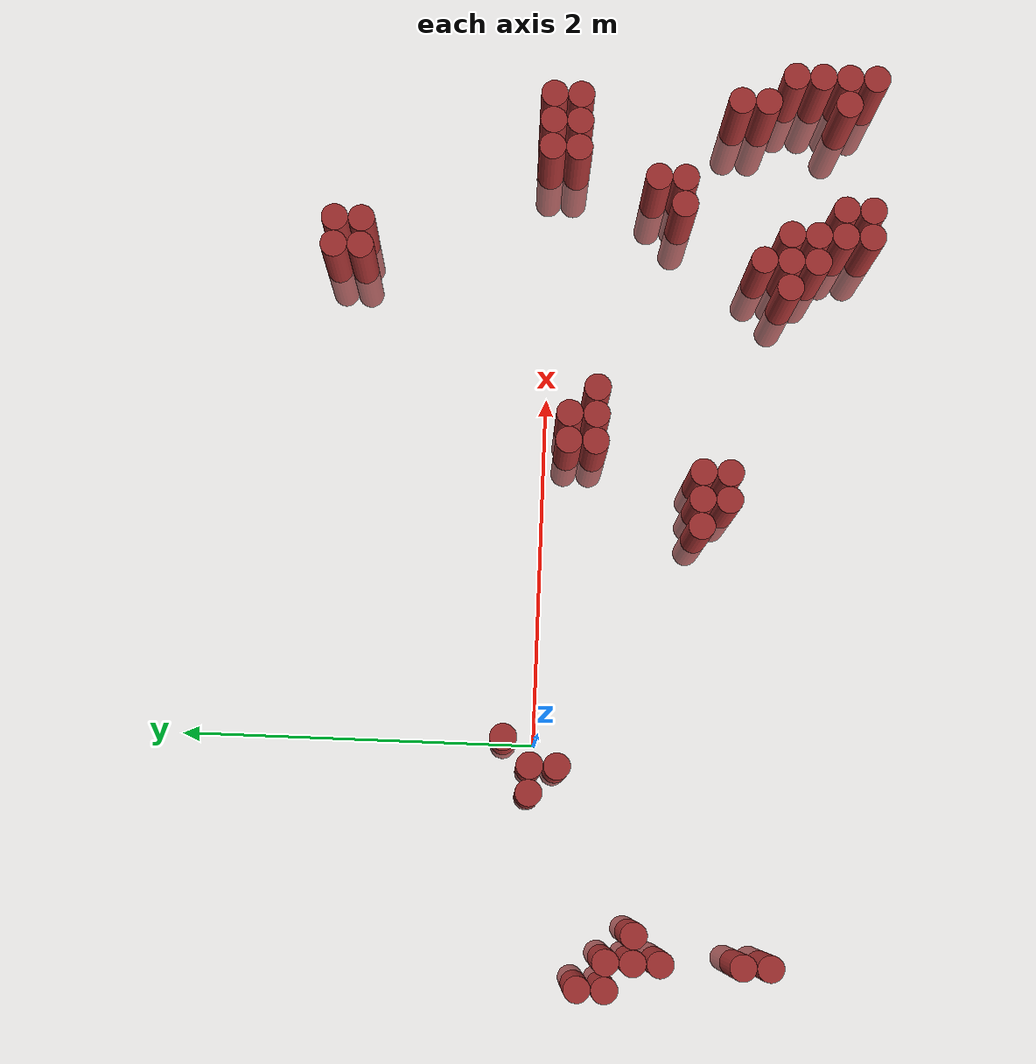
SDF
<sdf version="1.6">
 <world name="default">
  <model name="ground_plane">
   <static>1</static>
   <link name="link">
    <collision name="collision">
     <geometry><plane><normal>0 0 1</normal><size>100 100</size></plane></geometry>
     <surface><friction><ode><mu>100</mu><mu2>50</mu2></ode></friction></surface>
    </collision>
    <visual name="visual">
     <cast_shadows>0</cast_shadows>
     <geometry><plane><normal>0 0 1</normal><size>100 100</size></plane></geometry>
     <material>
      <script><uri>file://media/materials/scripts/gazebo.material</uri><name>Gazebo/Grey</name></script>
     </material>
    </visual>
   </link>
  </model>
  <model name="unit_cylinder_311">
   <static>1</static>
   <pose>-1.325000 -0.425000 0.000000 0.000000 0.000000 0.000000</pose>
   <link name="link">
    <inertial>
     <mass>1</mass>
     <inertia><ixx>0.145833</ixx><ixy>0</ixy><ixz>0</ixz><iyy>0.145833</iyy><iyz>0</iyz><izz>0.125</izz></inertia>
    </inertial>
    <collision name="collision">
     <geometry><cylinder><radius>0.075000</radius><length>1.5</length></cylinder></geometry>
    </collision>
    <visual name="visual">
     <geometry><cylinder><radius>0.075000</radius><length>1.5</length></cylinder></geometry>
     <material>
      <ambient>0.648000 0.192000 0.192000 1</ambient>
      <diffuse>0.648000 0.192000 0.192000 1</diffuse>
     </material>
     <material>
      <script><name>Gazebo/Grey</name><uri>file://media/materials/scripts/gazebo.material</uri></script>
     </material>
    </visual>
   </link>
  </model>
  <model name="unit_cylinder_312">
   <static>1</static>
   <pose>-1.325000 -0.275000 0.000000 0.000000 0.000000 0.000000</pose>
   <link name="link">
    <inertial>
     <mass>1</mass>
     <inertia><ixx>0.145833</ixx><ixy>0</ixy><ixz>0</ixz><iyy>0.145833</iyy><iyz>0</iyz><izz>0.125</izz></inertia>
    </inertial>
    <collision name="collision">
     <geometry><cylinder><radius>0.075000</radius><length>1.5</length></cylinder></geometry>
    </collision>
    <visual name="visual">
     <geometry><cylinder><radius>0.075000</radius><length>1.5</length></cylinder></geometry>
     <material>
      <ambient>0.648000 0.192000 0.192000 1</ambient>
      <diffuse>0.648000 0.192000 0.192000 1</diffuse>
     </material>
     <material>
      <script><name>Gazebo/Grey</name><uri>file://media/materials/scripts/gazebo.material</uri></script>
     </material>
    </visual>
   </link>
  </model>
  <model name="unit_cylinder_318">
   <static>1</static>
   <pose>-1.175000 -1.325000 0.000000 0.000000 0.000000 0.000000</pose>
   <link name="link">
    <inertial>
     <mass>1</mass>
     <inertia><ixx>0.145833</ixx><ixy>0</ixy><ixz>0</ixz><iyy>0.145833</iyy><iyz>0</iyz><izz>0.125</izz></inertia>
    </inertial>
    <collision name="collision">
     <geometry><cylinder><radius>0.075000</radius><length>1.5</length></cylinder></geometry>
    </collision>
    <visual name="visual">
     <geometry><cylinder><radius>0.075000</radius><length>1.5</length></cylinder></geometry>
     <material>
      <ambient>0.648000 0.192000 0.192000 1</ambient>
      <diffuse>0.648000 0.192000 0.192000 1</diffuse>
     </material>
     <material>
      <script><name>Gazebo/Grey</name><uri>file://media/materials/scripts/gazebo.material</uri></script>
     </material>
    </visual>
   </link>
  </model>
  <model name="unit_cylinder_319">
   <static>1</static>
   <pose>-1.175000 -1.175000 0.000000 0.000000 0.000000 0.000000</pose>
   <link name="link">
    <inertial>
     <mass>1</mass>
     <inertia><ixx>0.145833</ixx><ixy>0</ixy><ixz>0</ixz><iyy>0.145833</iyy><iyz>0</iyz><izz>0.125</izz></inertia>
    </inertial>
    <collision name="collision">
     <geometry><cylinder><radius>0.075000</radius><length>1.5</length></cylinder></geometry>
    </collision>
    <visual name="visual">
     <geometry><cylinder><radius>0.075000</radius><length>1.5</length></cylinder></geometry>
     <material>
      <ambient>0.648000 0.192000 0.192000 1</ambient>
      <diffuse>0.648000 0.192000 0.192000 1</diffuse>
     </material>
     <material>
      <script><name>Gazebo/Grey</name><uri>file://media/materials/scripts/gazebo.material</uri></script>
     </material>
    </visual>
   </link>
  </model>
  <model name="unit_cylinder_320">
   <static>1</static>
   <pose>-1.175000 -0.725000 0.000000 0.000000 0.000000 0.000000</pose>
   <link name="link">
    <inertial>
     <mass>1</mass>
     <inertia><ixx>0.145833</ixx><ixy>0</ixy><ixz>0</ixz><iyy>0.145833</iyy><iyz>0</iyz><izz>0.125</izz></inertia>
    </inertial>
    <collision name="collision">
     <geometry><cylinder><radius>0.075000</radius><length>1.5</length></cylinder></geometry>
    </collision>
    <visual name="visual">
     <geometry><cylinder><radius>0.075000</radius><length>1.5</length></cylinder></geometry>
     <material>
      <ambient>0.648000 0.192000 0.192000 1</ambient>
      <diffuse>0.648000 0.192000 0.192000 1</diffuse>
     </material>
     <material>
      <script><name>Gazebo/Grey</name><uri>file://media/materials/scripts/gazebo.material</uri></script>
     </material>
    </visual>
   </link>
  </model>
  <model name="unit_cylinder_321">
   <static>1</static>
   <pose>-1.175000 -0.575000 0.000000 0.000000 0.000000 0.000000</pose>
   <link name="link">
    <inertial>
     <mass>1</mass>
     <inertia><ixx>0.145833</ixx><ixy>0</ixy><ixz>0</ixz><iyy>0.145833</iyy><iyz>0</iyz><izz>0.125</izz></inertia>
    </inertial>
    <collision name="collision">
     <geometry><cylinder><radius>0.075000</radius><length>1.5</length></cylinder></geometry>
    </collision>
    <visual name="visual">
     <geometry><cylinder><radius>0.075000</radius><length>1.5</length></cylinder></geometry>
     <material>
      <ambient>0.648000 0.192000 0.192000 1</ambient>
      <diffuse>0.648000 0.192000 0.192000 1</diffuse>
     </material>
     <material>
      <script><name>Gazebo/Grey</name><uri>file://media/materials/scripts/gazebo.material</uri></script>
     </material>
    </visual>
   </link>
  </model>
  <model name="unit_cylinder_322">
   <static>1</static>
   <pose>-1.175000 -0.425000 0.000000 0.000000 0.000000 0.000000</pose>
   <link name="link">
    <inertial>
     <mass>1</mass>
     <inertia><ixx>0.145833</ixx><ixy>0</ixy><ixz>0</ixz><iyy>0.145833</iyy><iyz>0</iyz><izz>0.125</izz></inertia>
    </inertial>
    <collision name="collision">
     <geometry><cylinder><radius>0.075000</radius><length>1.5</length></cylinder></geometry>
    </collision>
    <visual name="visual">
     <geometry><cylinder><radius>0.075000</radius><length>1.5</length></cylinder></geometry>
     <material>
      <ambient>0.648000 0.192000 0.192000 1</ambient>
      <diffuse>0.648000 0.192000 0.192000 1</diffuse>
     </material>
     <material>
      <script><name>Gazebo/Grey</name><uri>file://media/materials/scripts/gazebo.material</uri></script>
     </material>
    </visual>
   </link>
  </model>
  <model name="unit_cylinder_326">
   <static>1</static>
   <pose>-1.025000 -0.575000 0.000000 0.000000 0.000000 0.000000</pose>
   <link name="link">
    <inertial>
     <mass>1</mass>
     <inertia><ixx>0.145833</ixx><ixy>0</ixy><ixz>0</ixz><iyy>0.145833</iyy><iyz>0</iyz><izz>0.125</izz></inertia>
    </inertial>
    <collision name="collision">
     <geometry><cylinder><radius>0.075000</radius><length>1.5</length></cylinder></geometry>
    </collision>
    <visual name="visual">
     <geometry><cylinder><radius>0.075000</radius><length>1.5</length></cylinder></geometry>
     <material>
      <ambient>0.648000 0.192000 0.192000 1</ambient>
      <diffuse>0.648000 0.192000 0.192000 1</diffuse>
     </material>
     <material>
      <script><name>Gazebo/Grey</name><uri>file://media/materials/scripts/gazebo.material</uri></script>
     </material>
    </visual>
   </link>
  </model>
  <model name="unit_cylinder_332">
   <static>1</static>
   <pose>-0.275000 0.025000 0.000000 0.000000 0.000000 0.000000</pose>
   <link name="link">
    <inertial>
     <mass>1</mass>
     <inertia><ixx>0.145833</ixx><ixy>0</ixy><ixz>0</ixz><iyy>0.145833</iyy><iyz>0</iyz><izz>0.125</izz></inertia>
    </inertial>
    <collision name="collision">
     <geometry><cylinder><radius>0.075000</radius><length>1.5</length></cylinder></geometry>
    </collision>
    <visual name="visual">
     <geometry><cylinder><radius>0.075000</radius><length>1.5</length></cylinder></geometry>
     <material>
      <ambient>0.648000 0.192000 0.192000 1</ambient>
      <diffuse>0.648000 0.192000 0.192000 1</diffuse>
     </material>
     <material>
      <script><name>Gazebo/Grey</name><uri>file://media/materials/scripts/gazebo.material</uri></script>
     </material>
    </visual>
   </link>
  </model>
  <model name="unit_cylinder_338">
   <static>1</static>
   <pose>-0.125000 -0.125000 0.000000 0.000000 0.000000 0.000000</pose>
   <link name="link">
    <inertial>
     <mass>1</mass>
     <inertia><ixx>0.145833</ixx><ixy>0</ixy><ixz>0</ixz><iyy>0.145833</iyy><iyz>0</iyz><izz>0.125</izz></inertia>
    </inertial>
    <collision name="collision">
     <geometry><cylinder><radius>0.075000</radius><length>1.5</length></cylinder></geometry>
    </collision>
    <visual name="visual">
     <geometry><cylinder><radius>0.075000</radius><length>1.5</length></cylinder></geometry>
     <material>
      <ambient>0.648000 0.192000 0.192000 1</ambient>
      <diffuse>0.648000 0.192000 0.192000 1</diffuse>
     </material>
     <material>
      <script><name>Gazebo/Grey</name><uri>file://media/materials/scripts/gazebo.material</uri></script>
     </material>
    </visual>
   </link>
  </model>
  <model name="unit_cylinder_339">
   <static>1</static>
   <pose>-0.125000 0.025000 0.000000 0.000000 0.000000 0.000000</pose>
   <link name="link">
    <inertial>
     <mass>1</mass>
     <inertia><ixx>0.145833</ixx><ixy>0</ixy><ixz>0</ixz><iyy>0.145833</iyy><iyz>0</iyz><izz>0.125</izz></inertia>
    </inertial>
    <collision name="collision">
     <geometry><cylinder><radius>0.075000</radius><length>1.5</length></cylinder></geometry>
    </collision>
    <visual name="visual">
     <geometry><cylinder><radius>0.075000</radius><length>1.5</length></cylinder></geometry>
     <material>
      <ambient>0.648000 0.192000 0.192000 1</ambient>
      <diffuse>0.648000 0.192000 0.192000 1</diffuse>
     </material>
     <material>
      <script><name>Gazebo/Grey</name><uri>file://media/materials/scripts/gazebo.material</uri></script>
     </material>
    </visual>
   </link>
  </model>
  <model name="unit_cylinder_345">
   <static>1</static>
   <pose>0.025000 0.175000 0.000000 0.000000 0.000000 0.000000</pose>
   <link name="link">
    <inertial>
     <mass>1</mass>
     <inertia><ixx>0.145833</ixx><ixy>0</ixy><ixz>0</ixz><iyy>0.145833</iyy><iyz>0</iyz><izz>0.125</izz></inertia>
    </inertial>
    <collision name="collision">
     <geometry><cylinder><radius>0.075000</radius><length>1.5</length></cylinder></geometry>
    </collision>
    <visual name="visual">
     <geometry><cylinder><radius>0.075000</radius><length>1.5</length></cylinder></geometry>
     <material>
      <ambient>0.648000 0.192000 0.192000 1</ambient>
      <diffuse>0.648000 0.192000 0.192000 1</diffuse>
     </material>
     <material>
      <script><name>Gazebo/Grey</name><uri>file://media/materials/scripts/gazebo.material</uri></script>
     </material>
    </visual>
   </link>
  </model>
  <model name="unit_cylinder_368">
   <static>1</static>
   <pose>1.225000 -0.875000 0.000000 0.000000 0.000000 0.000000</pose>
   <link name="link">
    <inertial>
     <mass>1</mass>
     <inertia><ixx>0.145833</ixx><ixy>0</ixy><ixz>0</ixz><iyy>0.145833</iyy><iyz>0</iyz><izz>0.125</izz></inertia>
    </inertial>
    <collision name="collision">
     <geometry><cylinder><radius>0.075000</radius><length>1.5</length></cylinder></geometry>
    </collision>
    <visual name="visual">
     <geometry><cylinder><radius>0.075000</radius><length>1.5</length></cylinder></geometry>
     <material>
      <ambient>0.648000 0.192000 0.192000 1</ambient>
      <diffuse>0.648000 0.192000 0.192000 1</diffuse>
     </material>
     <material>
      <script><name>Gazebo/Grey</name><uri>file://media/materials/scripts/gazebo.material</uri></script>
     </material>
    </visual>
   </link>
  </model>
  <model name="unit_cylinder_371">
   <static>1</static>
   <pose>1.375000 -1.025000 0.000000 0.000000 0.000000 0.000000</pose>
   <link name="link">
    <inertial>
     <mass>1</mass>
     <inertia><ixx>0.145833</ixx><ixy>0</ixy><ixz>0</ixz><iyy>0.145833</iyy><iyz>0</iyz><izz>0.125</izz></inertia>
    </inertial>
    <collision name="collision">
     <geometry><cylinder><radius>0.075000</radius><length>1.5</length></cylinder></geometry>
    </collision>
    <visual name="visual">
     <geometry><cylinder><radius>0.075000</radius><length>1.5</length></cylinder></geometry>
     <material>
      <ambient>0.648000 0.192000 0.192000 1</ambient>
      <diffuse>0.648000 0.192000 0.192000 1</diffuse>
     </material>
     <material>
      <script><name>Gazebo/Grey</name><uri>file://media/materials/scripts/gazebo.material</uri></script>
     </material>
    </visual>
   </link>
  </model>
  <model name="unit_cylinder_372">
   <static>1</static>
   <pose>1.375000 -0.875000 0.000000 0.000000 0.000000 0.000000</pose>
   <link name="link">
    <inertial>
     <mass>1</mass>
     <inertia><ixx>0.145833</ixx><ixy>0</ixy><ixz>0</ixz><iyy>0.145833</iyy><iyz>0</iyz><izz>0.125</izz></inertia>
    </inertial>
    <collision name="collision">
     <geometry><cylinder><radius>0.075000</radius><length>1.5</length></cylinder></geometry>
    </collision>
    <visual name="visual">
     <geometry><cylinder><radius>0.075000</radius><length>1.5</length></cylinder></geometry>
     <material>
      <ambient>0.648000 0.192000 0.192000 1</ambient>
      <diffuse>0.648000 0.192000 0.192000 1</diffuse>
     </material>
     <material>
      <script><name>Gazebo/Grey</name><uri>file://media/materials/scripts/gazebo.material</uri></script>
     </material>
    </visual>
   </link>
  </model>
  <model name="unit_cylinder_373">
   <static>1</static>
   <pose>1.525000 -1.025000 0.000000 0.000000 0.000000 0.000000</pose>
   <link name="link">
    <inertial>
     <mass>1</mass>
     <inertia><ixx>0.145833</ixx><ixy>0</ixy><ixz>0</ixz><iyy>0.145833</iyy><iyz>0</iyz><izz>0.125</izz></inertia>
    </inertial>
    <collision name="collision">
     <geometry><cylinder><radius>0.075000</radius><length>1.5</length></cylinder></geometry>
    </collision>
    <visual name="visual">
     <geometry><cylinder><radius>0.075000</radius><length>1.5</length></cylinder></geometry>
     <material>
      <ambient>0.648000 0.192000 0.192000 1</ambient>
      <diffuse>0.648000 0.192000 0.192000 1</diffuse>
     </material>
     <material>
      <script><name>Gazebo/Grey</name><uri>file://media/materials/scripts/gazebo.material</uri></script>
     </material>
    </visual>
   </link>
  </model>
  <model name="unit_cylinder_374">
   <static>1</static>
   <pose>1.525000 -0.875000 0.000000 0.000000 0.000000 0.000000</pose>
   <link name="link">
    <inertial>
     <mass>1</mass>
     <inertia><ixx>0.145833</ixx><ixy>0</ixy><ixz>0</ixz><iyy>0.145833</iyy><iyz>0</iyz><izz>0.125</izz></inertia>
    </inertial>
    <collision name="collision">
     <geometry><cylinder><radius>0.075000</radius><length>1.5</length></cylinder></geometry>
    </collision>
    <visual name="visual">
     <geometry><cylinder><radius>0.075000</radius><length>1.5</length></cylinder></geometry>
     <material>
      <ambient>0.648000 0.192000 0.192000 1</ambient>
      <diffuse>0.648000 0.192000 0.192000 1</diffuse>
     </material>
     <material>
      <script><name>Gazebo/Grey</name><uri>file://media/materials/scripts/gazebo.material</uri></script>
     </material>
    </visual>
   </link>
  </model>
  <model name="unit_cylinder_375">
   <static>1</static>
   <pose>1.675000 -0.275000 0.000000 0.000000 0.000000 0.000000</pose>
   <link name="link">
    <inertial>
     <mass>1</mass>
     <inertia><ixx>0.145833</ixx><ixy>0</ixy><ixz>0</ixz><iyy>0.145833</iyy><iyz>0</iyz><izz>0.125</izz></inertia>
    </inertial>
    <collision name="collision">
     <geometry><cylinder><radius>0.075000</radius><length>1.5</length></cylinder></geometry>
    </collision>
    <visual name="visual">
     <geometry><cylinder><radius>0.075000</radius><length>1.5</length></cylinder></geometry>
     <material>
      <ambient>0.648000 0.192000 0.192000 1</ambient>
      <diffuse>0.648000 0.192000 0.192000 1</diffuse>
     </material>
     <material>
      <script><name>Gazebo/Grey</name><uri>file://media/materials/scripts/gazebo.material</uri></script>
     </material>
    </visual>
   </link>
  </model>
  <model name="unit_cylinder_376">
   <static>1</static>
   <pose>1.675000 -0.125000 0.000000 0.000000 0.000000 0.000000</pose>
   <link name="link">
    <inertial>
     <mass>1</mass>
     <inertia><ixx>0.145833</ixx><ixy>0</ixy><ixz>0</ixz><iyy>0.145833</iyy><iyz>0</iyz><izz>0.125</izz></inertia>
    </inertial>
    <collision name="collision">
     <geometry><cylinder><radius>0.075000</radius><length>1.5</length></cylinder></geometry>
    </collision>
    <visual name="visual">
     <geometry><cylinder><radius>0.075000</radius><length>1.5</length></cylinder></geometry>
     <material>
      <ambient>0.648000 0.192000 0.192000 1</ambient>
      <diffuse>0.648000 0.192000 0.192000 1</diffuse>
     </material>
     <material>
      <script><name>Gazebo/Grey</name><uri>file://media/materials/scripts/gazebo.material</uri></script>
     </material>
    </visual>
   </link>
  </model>
  <model name="unit_cylinder_377">
   <static>1</static>
   <pose>1.825000 -0.275000 0.000000 0.000000 0.000000 0.000000</pose>
   <link name="link">
    <inertial>
     <mass>1</mass>
     <inertia><ixx>0.145833</ixx><ixy>0</ixy><ixz>0</ixz><iyy>0.145833</iyy><iyz>0</iyz><izz>0.125</izz></inertia>
    </inertial>
    <collision name="collision">
     <geometry><cylinder><radius>0.075000</radius><length>1.5</length></cylinder></geometry>
    </collision>
    <visual name="visual">
     <geometry><cylinder><radius>0.075000</radius><length>1.5</length></cylinder></geometry>
     <material>
      <ambient>0.648000 0.192000 0.192000 1</ambient>
      <diffuse>0.648000 0.192000 0.192000 1</diffuse>
     </material>
     <material>
      <script><name>Gazebo/Grey</name><uri>file://media/materials/scripts/gazebo.material</uri></script>
     </material>
    </visual>
   </link>
  </model>
  <model name="unit_cylinder_378">
   <static>1</static>
   <pose>1.825000 -0.125000 0.000000 0.000000 0.000000 0.000000</pose>
   <link name="link">
    <inertial>
     <mass>1</mass>
     <inertia><ixx>0.145833</ixx><ixy>0</ixy><ixz>0</ixz><iyy>0.145833</iyy><iyz>0</iyz><izz>0.125</izz></inertia>
    </inertial>
    <collision name="collision">
     <geometry><cylinder><radius>0.075000</radius><length>1.5</length></cylinder></geometry>
    </collision>
    <visual name="visual">
     <geometry><cylinder><radius>0.075000</radius><length>1.5</length></cylinder></geometry>
     <material>
      <ambient>0.648000 0.192000 0.192000 1</ambient>
      <diffuse>0.648000 0.192000 0.192000 1</diffuse>
     </material>
     <material>
      <script><name>Gazebo/Grey</name><uri>file://media/materials/scripts/gazebo.material</uri></script>
     </material>
    </visual>
   </link>
  </model>
  <model name="unit_cylinder_381">
   <static>1</static>
   <pose>1.975000 -0.275000 0.000000 0.000000 0.000000 0.000000</pose>
   <link name="link">
    <inertial>
     <mass>1</mass>
     <inertia><ixx>0.145833</ixx><ixy>0</ixy><ixz>0</ixz><iyy>0.145833</iyy><iyz>0</iyz><izz>0.125</izz></inertia>
    </inertial>
    <collision name="collision">
     <geometry><cylinder><radius>0.075000</radius><length>1.5</length></cylinder></geometry>
    </collision>
    <visual name="visual">
     <geometry><cylinder><radius>0.075000</radius><length>1.5</length></cylinder></geometry>
     <material>
      <ambient>0.648000 0.192000 0.192000 1</ambient>
      <diffuse>0.648000 0.192000 0.192000 1</diffuse>
     </material>
     <material>
      <script><name>Gazebo/Grey</name><uri>file://media/materials/scripts/gazebo.material</uri></script>
     </material>
    </visual>
   </link>
  </model>
  <model name="unit_cylinder_401">
   <static>1</static>
   <pose>2.575000 -1.325000 0.000000 0.000000 0.000000 0.000000</pose>
   <link name="link">
    <inertial>
     <mass>1</mass>
     <inertia><ixx>0.145833</ixx><ixy>0</ixy><ixz>0</ixz><iyy>0.145833</iyy><iyz>0</iyz><izz>0.125</izz></inertia>
    </inertial>
    <collision name="collision">
     <geometry><cylinder><radius>0.075000</radius><length>1.5</length></cylinder></geometry>
    </collision>
    <visual name="visual">
     <geometry><cylinder><radius>0.075000</radius><length>1.5</length></cylinder></geometry>
     <material>
      <ambient>0.648000 0.192000 0.192000 1</ambient>
      <diffuse>0.648000 0.192000 0.192000 1</diffuse>
     </material>
     <material>
      <script><name>Gazebo/Grey</name><uri>file://media/materials/scripts/gazebo.material</uri></script>
     </material>
    </visual>
   </link>
  </model>
  <model name="unit_cylinder_405">
   <static>1</static>
   <pose>2.725000 -1.475000 0.000000 0.000000 0.000000 0.000000</pose>
   <link name="link">
    <inertial>
     <mass>1</mass>
     <inertia><ixx>0.145833</ixx><ixy>0</ixy><ixz>0</ixz><iyy>0.145833</iyy><iyz>0</iyz><izz>0.125</izz></inertia>
    </inertial>
    <collision name="collision">
     <geometry><cylinder><radius>0.075000</radius><length>1.5</length></cylinder></geometry>
    </collision>
    <visual name="visual">
     <geometry><cylinder><radius>0.075000</radius><length>1.5</length></cylinder></geometry>
     <material>
      <ambient>0.648000 0.192000 0.192000 1</ambient>
      <diffuse>0.648000 0.192000 0.192000 1</diffuse>
     </material>
     <material>
      <script><name>Gazebo/Grey</name><uri>file://media/materials/scripts/gazebo.material</uri></script>
     </material>
    </visual>
   </link>
  </model>
  <model name="unit_cylinder_406">
   <static>1</static>
   <pose>2.725000 -1.325000 0.000000 0.000000 0.000000 0.000000</pose>
   <link name="link">
    <inertial>
     <mass>1</mass>
     <inertia><ixx>0.145833</ixx><ixy>0</ixy><ixz>0</ixz><iyy>0.145833</iyy><iyz>0</iyz><izz>0.125</izz></inertia>
    </inertial>
    <collision name="collision">
     <geometry><cylinder><radius>0.075000</radius><length>1.5</length></cylinder></geometry>
    </collision>
    <visual name="visual">
     <geometry><cylinder><radius>0.075000</radius><length>1.5</length></cylinder></geometry>
     <material>
      <ambient>0.648000 0.192000 0.192000 1</ambient>
      <diffuse>0.648000 0.192000 0.192000 1</diffuse>
     </material>
     <material>
      <script><name>Gazebo/Grey</name><uri>file://media/materials/scripts/gazebo.material</uri></script>
     </material>
    </visual>
   </link>
  </model>
  <model name="unit_cylinder_407">
   <static>1</static>
   <pose>2.725000 -1.175000 0.000000 0.000000 0.000000 0.000000</pose>
   <link name="link">
    <inertial>
     <mass>1</mass>
     <inertia><ixx>0.145833</ixx><ixy>0</ixy><ixz>0</ixz><iyy>0.145833</iyy><iyz>0</iyz><izz>0.125</izz></inertia>
    </inertial>
    <collision name="collision">
     <geometry><cylinder><radius>0.075000</radius><length>1.5</length></cylinder></geometry>
    </collision>
    <visual name="visual">
     <geometry><cylinder><radius>0.075000</radius><length>1.5</length></cylinder></geometry>
     <material>
      <ambient>0.648000 0.192000 0.192000 1</ambient>
      <diffuse>0.648000 0.192000 0.192000 1</diffuse>
     </material>
     <material>
      <script><name>Gazebo/Grey</name><uri>file://media/materials/scripts/gazebo.material</uri></script>
     </material>
    </visual>
   </link>
  </model>
  <model name="unit_cylinder_408">
   <static>1</static>
   <pose>2.725000 1.075000 0.000000 0.000000 0.000000 0.000000</pose>
   <link name="link">
    <inertial>
     <mass>1</mass>
     <inertia><ixx>0.145833</ixx><ixy>0</ixy><ixz>0</ixz><iyy>0.145833</iyy><iyz>0</iyz><izz>0.125</izz></inertia>
    </inertial>
    <collision name="collision">
     <geometry><cylinder><radius>0.075000</radius><length>1.5</length></cylinder></geometry>
    </collision>
    <visual name="visual">
     <geometry><cylinder><radius>0.075000</radius><length>1.5</length></cylinder></geometry>
     <material>
      <ambient>0.648000 0.192000 0.192000 1</ambient>
      <diffuse>0.648000 0.192000 0.192000 1</diffuse>
     </material>
     <material>
      <script><name>Gazebo/Grey</name><uri>file://media/materials/scripts/gazebo.material</uri></script>
     </material>
    </visual>
   </link>
  </model>
  <model name="unit_cylinder_409">
   <static>1</static>
   <pose>2.725000 1.225000 0.000000 0.000000 0.000000 0.000000</pose>
   <link name="link">
    <inertial>
     <mass>1</mass>
     <inertia><ixx>0.145833</ixx><ixy>0</ixy><ixz>0</ixz><iyy>0.145833</iyy><iyz>0</iyz><izz>0.125</izz></inertia>
    </inertial>
    <collision name="collision">
     <geometry><cylinder><radius>0.075000</radius><length>1.5</length></cylinder></geometry>
    </collision>
    <visual name="visual">
     <geometry><cylinder><radius>0.075000</radius><length>1.5</length></cylinder></geometry>
     <material>
      <ambient>0.648000 0.192000 0.192000 1</ambient>
      <diffuse>0.648000 0.192000 0.192000 1</diffuse>
     </material>
     <material>
      <script><name>Gazebo/Grey</name><uri>file://media/materials/scripts/gazebo.material</uri></script>
     </material>
    </visual>
   </link>
  </model>
  <model name="unit_cylinder_414">
   <static>1</static>
   <pose>2.875000 -1.775000 0.000000 0.000000 0.000000 0.000000</pose>
   <link name="link">
    <inertial>
     <mass>1</mass>
     <inertia><ixx>0.145833</ixx><ixy>0</ixy><ixz>0</ixz><iyy>0.145833</iyy><iyz>0</iyz><izz>0.125</izz></inertia>
    </inertial>
    <collision name="collision">
     <geometry><cylinder><radius>0.075000</radius><length>1.5</length></cylinder></geometry>
    </collision>
    <visual name="visual">
     <geometry><cylinder><radius>0.075000</radius><length>1.5</length></cylinder></geometry>
     <material>
      <ambient>0.648000 0.192000 0.192000 1</ambient>
      <diffuse>0.648000 0.192000 0.192000 1</diffuse>
     </material>
     <material>
      <script><name>Gazebo/Grey</name><uri>file://media/materials/scripts/gazebo.material</uri></script>
     </material>
    </visual>
   </link>
  </model>
  <model name="unit_cylinder_415">
   <static>1</static>
   <pose>2.875000 -1.625000 0.000000 0.000000 0.000000 0.000000</pose>
   <link name="link">
    <inertial>
     <mass>1</mass>
     <inertia><ixx>0.145833</ixx><ixy>0</ixy><ixz>0</ixz><iyy>0.145833</iyy><iyz>0</iyz><izz>0.125</izz></inertia>
    </inertial>
    <collision name="collision">
     <geometry><cylinder><radius>0.075000</radius><length>1.5</length></cylinder></geometry>
    </collision>
    <visual name="visual">
     <geometry><cylinder><radius>0.075000</radius><length>1.5</length></cylinder></geometry>
     <material>
      <ambient>0.648000 0.192000 0.192000 1</ambient>
      <diffuse>0.648000 0.192000 0.192000 1</diffuse>
     </material>
     <material>
      <script><name>Gazebo/Grey</name><uri>file://media/materials/scripts/gazebo.material</uri></script>
     </material>
    </visual>
   </link>
  </model>
  <model name="unit_cylinder_416">
   <static>1</static>
   <pose>2.875000 -1.475000 0.000000 0.000000 0.000000 0.000000</pose>
   <link name="link">
    <inertial>
     <mass>1</mass>
     <inertia><ixx>0.145833</ixx><ixy>0</ixy><ixz>0</ixz><iyy>0.145833</iyy><iyz>0</iyz><izz>0.125</izz></inertia>
    </inertial>
    <collision name="collision">
     <geometry><cylinder><radius>0.075000</radius><length>1.5</length></cylinder></geometry>
    </collision>
    <visual name="visual">
     <geometry><cylinder><radius>0.075000</radius><length>1.5</length></cylinder></geometry>
     <material>
      <ambient>0.648000 0.192000 0.192000 1</ambient>
      <diffuse>0.648000 0.192000 0.192000 1</diffuse>
     </material>
     <material>
      <script><name>Gazebo/Grey</name><uri>file://media/materials/scripts/gazebo.material</uri></script>
     </material>
    </visual>
   </link>
  </model>
  <model name="unit_cylinder_417">
   <static>1</static>
   <pose>2.875000 -1.325000 0.000000 0.000000 0.000000 0.000000</pose>
   <link name="link">
    <inertial>
     <mass>1</mass>
     <inertia><ixx>0.145833</ixx><ixy>0</ixy><ixz>0</ixz><iyy>0.145833</iyy><iyz>0</iyz><izz>0.125</izz></inertia>
    </inertial>
    <collision name="collision">
     <geometry><cylinder><radius>0.075000</radius><length>1.5</length></cylinder></geometry>
    </collision>
    <visual name="visual">
     <geometry><cylinder><radius>0.075000</radius><length>1.5</length></cylinder></geometry>
     <material>
      <ambient>0.648000 0.192000 0.192000 1</ambient>
      <diffuse>0.648000 0.192000 0.192000 1</diffuse>
     </material>
     <material>
      <script><name>Gazebo/Grey</name><uri>file://media/materials/scripts/gazebo.material</uri></script>
     </material>
    </visual>
   </link>
  </model>
  <model name="unit_cylinder_418">
   <static>1</static>
   <pose>2.875000 1.075000 0.000000 0.000000 0.000000 0.000000</pose>
   <link name="link">
    <inertial>
     <mass>1</mass>
     <inertia><ixx>0.145833</ixx><ixy>0</ixy><ixz>0</ixz><iyy>0.145833</iyy><iyz>0</iyz><izz>0.125</izz></inertia>
    </inertial>
    <collision name="collision">
     <geometry><cylinder><radius>0.075000</radius><length>1.5</length></cylinder></geometry>
    </collision>
    <visual name="visual">
     <geometry><cylinder><radius>0.075000</radius><length>1.5</length></cylinder></geometry>
     <material>
      <ambient>0.648000 0.192000 0.192000 1</ambient>
      <diffuse>0.648000 0.192000 0.192000 1</diffuse>
     </material>
     <material>
      <script><name>Gazebo/Grey</name><uri>file://media/materials/scripts/gazebo.material</uri></script>
     </material>
    </visual>
   </link>
  </model>
  <model name="unit_cylinder_419">
   <static>1</static>
   <pose>2.875000 1.225000 0.000000 0.000000 0.000000 0.000000</pose>
   <link name="link">
    <inertial>
     <mass>1</mass>
     <inertia><ixx>0.145833</ixx><ixy>0</ixy><ixz>0</ixz><iyy>0.145833</iyy><iyz>0</iyz><izz>0.125</izz></inertia>
    </inertial>
    <collision name="collision">
     <geometry><cylinder><radius>0.075000</radius><length>1.5</length></cylinder></geometry>
    </collision>
    <visual name="visual">
     <geometry><cylinder><radius>0.075000</radius><length>1.5</length></cylinder></geometry>
     <material>
      <ambient>0.648000 0.192000 0.192000 1</ambient>
      <diffuse>0.648000 0.192000 0.192000 1</diffuse>
     </material>
     <material>
      <script><name>Gazebo/Grey</name><uri>file://media/materials/scripts/gazebo.material</uri></script>
     </material>
    </visual>
   </link>
  </model>
  <model name="unit_cylinder_422">
   <static>1</static>
   <pose>3.025000 -1.775000 0.000000 0.000000 0.000000 0.000000</pose>
   <link name="link">
    <inertial>
     <mass>1</mass>
     <inertia><ixx>0.145833</ixx><ixy>0</ixy><ixz>0</ixz><iyy>0.145833</iyy><iyz>0</iyz><izz>0.125</izz></inertia>
    </inertial>
    <collision name="collision">
     <geometry><cylinder><radius>0.075000</radius><length>1.5</length></cylinder></geometry>
    </collision>
    <visual name="visual">
     <geometry><cylinder><radius>0.075000</radius><length>1.5</length></cylinder></geometry>
     <material>
      <ambient>0.648000 0.192000 0.192000 1</ambient>
      <diffuse>0.648000 0.192000 0.192000 1</diffuse>
     </material>
     <material>
      <script><name>Gazebo/Grey</name><uri>file://media/materials/scripts/gazebo.material</uri></script>
     </material>
    </visual>
   </link>
  </model>
  <model name="unit_cylinder_423">
   <static>1</static>
   <pose>3.025000 -1.625000 0.000000 0.000000 0.000000 0.000000</pose>
   <link name="link">
    <inertial>
     <mass>1</mass>
     <inertia><ixx>0.145833</ixx><ixy>0</ixy><ixz>0</ixz><iyy>0.145833</iyy><iyz>0</iyz><izz>0.125</izz></inertia>
    </inertial>
    <collision name="collision">
     <geometry><cylinder><radius>0.075000</radius><length>1.5</length></cylinder></geometry>
    </collision>
    <visual name="visual">
     <geometry><cylinder><radius>0.075000</radius><length>1.5</length></cylinder></geometry>
     <material>
      <ambient>0.648000 0.192000 0.192000 1</ambient>
      <diffuse>0.648000 0.192000 0.192000 1</diffuse>
     </material>
     <material>
      <script><name>Gazebo/Grey</name><uri>file://media/materials/scripts/gazebo.material</uri></script>
     </material>
    </visual>
   </link>
  </model>
  <model name="unit_cylinder_424">
   <static>1</static>
   <pose>3.025000 -0.725000 0.000000 0.000000 0.000000 0.000000</pose>
   <link name="link">
    <inertial>
     <mass>1</mass>
     <inertia><ixx>0.145833</ixx><ixy>0</ixy><ixz>0</ixz><iyy>0.145833</iyy><iyz>0</iyz><izz>0.125</izz></inertia>
    </inertial>
    <collision name="collision">
     <geometry><cylinder><radius>0.075000</radius><length>1.5</length></cylinder></geometry>
    </collision>
    <visual name="visual">
     <geometry><cylinder><radius>0.075000</radius><length>1.5</length></cylinder></geometry>
     <material>
      <ambient>0.648000 0.192000 0.192000 1</ambient>
      <diffuse>0.648000 0.192000 0.192000 1</diffuse>
     </material>
     <material>
      <script><name>Gazebo/Grey</name><uri>file://media/materials/scripts/gazebo.material</uri></script>
     </material>
    </visual>
   </link>
  </model>
  <model name="unit_cylinder_425">
   <static>1</static>
   <pose>3.175000 -0.725000 0.000000 0.000000 0.000000 0.000000</pose>
   <link name="link">
    <inertial>
     <mass>1</mass>
     <inertia><ixx>0.145833</ixx><ixy>0</ixy><ixz>0</ixz><iyy>0.145833</iyy><iyz>0</iyz><izz>0.125</izz></inertia>
    </inertial>
    <collision name="collision">
     <geometry><cylinder><radius>0.075000</radius><length>1.5</length></cylinder></geometry>
    </collision>
    <visual name="visual">
     <geometry><cylinder><radius>0.075000</radius><length>1.5</length></cylinder></geometry>
     <material>
      <ambient>0.648000 0.192000 0.192000 1</ambient>
      <diffuse>0.648000 0.192000 0.192000 1</diffuse>
     </material>
     <material>
      <script><name>Gazebo/Grey</name><uri>file://media/materials/scripts/gazebo.material</uri></script>
     </material>
    </visual>
   </link>
  </model>
  <model name="unit_cylinder_426">
   <static>1</static>
   <pose>3.175000 -0.575000 0.000000 0.000000 0.000000 0.000000</pose>
   <link name="link">
    <inertial>
     <mass>1</mass>
     <inertia><ixx>0.145833</ixx><ixy>0</ixy><ixz>0</ixz><iyy>0.145833</iyy><iyz>0</iyz><izz>0.125</izz></inertia>
    </inertial>
    <collision name="collision">
     <geometry><cylinder><radius>0.075000</radius><length>1.5</length></cylinder></geometry>
    </collision>
    <visual name="visual">
     <geometry><cylinder><radius>0.075000</radius><length>1.5</length></cylinder></geometry>
     <material>
      <ambient>0.648000 0.192000 0.192000 1</ambient>
      <diffuse>0.648000 0.192000 0.192000 1</diffuse>
     </material>
     <material>
      <script><name>Gazebo/Grey</name><uri>file://media/materials/scripts/gazebo.material</uri></script>
     </material>
    </visual>
   </link>
  </model>
  <model name="unit_cylinder_427">
   <static>1</static>
   <pose>3.325000 -0.125000 0.000000 0.000000 0.000000 0.000000</pose>
   <link name="link">
    <inertial>
     <mass>1</mass>
     <inertia><ixx>0.145833</ixx><ixy>0</ixy><ixz>0</ixz><iyy>0.145833</iyy><iyz>0</iyz><izz>0.125</izz></inertia>
    </inertial>
    <collision name="collision">
     <geometry><cylinder><radius>0.075000</radius><length>1.5</length></cylinder></geometry>
    </collision>
    <visual name="visual">
     <geometry><cylinder><radius>0.075000</radius><length>1.5</length></cylinder></geometry>
     <material>
      <ambient>0.648000 0.192000 0.192000 1</ambient>
      <diffuse>0.648000 0.192000 0.192000 1</diffuse>
     </material>
     <material>
      <script><name>Gazebo/Grey</name><uri>file://media/materials/scripts/gazebo.material</uri></script>
     </material>
    </visual>
   </link>
  </model>
  <model name="unit_cylinder_428">
   <static>1</static>
   <pose>3.325000 0.025000 0.000000 0.000000 0.000000 0.000000</pose>
   <link name="link">
    <inertial>
     <mass>1</mass>
     <inertia><ixx>0.145833</ixx><ixy>0</ixy><ixz>0</ixz><iyy>0.145833</iyy><iyz>0</iyz><izz>0.125</izz></inertia>
    </inertial>
    <collision name="collision">
     <geometry><cylinder><radius>0.075000</radius><length>1.5</length></cylinder></geometry>
    </collision>
    <visual name="visual">
     <geometry><cylinder><radius>0.075000</radius><length>1.5</length></cylinder></geometry>
     <material>
      <ambient>0.648000 0.192000 0.192000 1</ambient>
      <diffuse>0.648000 0.192000 0.192000 1</diffuse>
     </material>
     <material>
      <script><name>Gazebo/Grey</name><uri>file://media/materials/scripts/gazebo.material</uri></script>
     </material>
    </visual>
   </link>
  </model>
  <model name="unit_cylinder_432">
   <static>1</static>
   <pose>3.475000 -0.125000 0.000000 0.000000 0.000000 0.000000</pose>
   <link name="link">
    <inertial>
     <mass>1</mass>
     <inertia><ixx>0.145833</ixx><ixy>0</ixy><ixz>0</ixz><iyy>0.145833</iyy><iyz>0</iyz><izz>0.125</izz></inertia>
    </inertial>
    <collision name="collision">
     <geometry><cylinder><radius>0.075000</radius><length>1.5</length></cylinder></geometry>
    </collision>
    <visual name="visual">
     <geometry><cylinder><radius>0.075000</radius><length>1.5</length></cylinder></geometry>
     <material>
      <ambient>0.648000 0.192000 0.192000 1</ambient>
      <diffuse>0.648000 0.192000 0.192000 1</diffuse>
     </material>
     <material>
      <script><name>Gazebo/Grey</name><uri>file://media/materials/scripts/gazebo.material</uri></script>
     </material>
    </visual>
   </link>
  </model>
  <model name="unit_cylinder_433">
   <static>1</static>
   <pose>3.475000 0.025000 0.000000 0.000000 0.000000 0.000000</pose>
   <link name="link">
    <inertial>
     <mass>1</mass>
     <inertia><ixx>0.145833</ixx><ixy>0</ixy><ixz>0</ixz><iyy>0.145833</iyy><iyz>0</iyz><izz>0.125</izz></inertia>
    </inertial>
    <collision name="collision">
     <geometry><cylinder><radius>0.075000</radius><length>1.5</length></cylinder></geometry>
    </collision>
    <visual name="visual">
     <geometry><cylinder><radius>0.075000</radius><length>1.5</length></cylinder></geometry>
     <material>
      <ambient>0.648000 0.192000 0.192000 1</ambient>
      <diffuse>0.648000 0.192000 0.192000 1</diffuse>
     </material>
     <material>
      <script><name>Gazebo/Grey</name><uri>file://media/materials/scripts/gazebo.material</uri></script>
     </material>
    </visual>
   </link>
  </model>
  <model name="unit_cylinder_440">
   <static>1</static>
   <pose>3.625000 -1.625000 0.000000 0.000000 0.000000 0.000000</pose>
   <link name="link">
    <inertial>
     <mass>1</mass>
     <inertia><ixx>0.145833</ixx><ixy>0</ixy><ixz>0</ixz><iyy>0.145833</iyy><iyz>0</iyz><izz>0.125</izz></inertia>
    </inertial>
    <collision name="collision">
     <geometry><cylinder><radius>0.075000</radius><length>1.5</length></cylinder></geometry>
    </collision>
    <visual name="visual">
     <geometry><cylinder><radius>0.075000</radius><length>1.5</length></cylinder></geometry>
     <material>
      <ambient>0.648000 0.192000 0.192000 1</ambient>
      <diffuse>0.648000 0.192000 0.192000 1</diffuse>
     </material>
     <material>
      <script><name>Gazebo/Grey</name><uri>file://media/materials/scripts/gazebo.material</uri></script>
     </material>
    </visual>
   </link>
  </model>
  <model name="unit_cylinder_441">
   <static>1</static>
   <pose>3.625000 -1.175000 0.000000 0.000000 0.000000 0.000000</pose>
   <link name="link">
    <inertial>
     <mass>1</mass>
     <inertia><ixx>0.145833</ixx><ixy>0</ixy><ixz>0</ixz><iyy>0.145833</iyy><iyz>0</iyz><izz>0.125</izz></inertia>
    </inertial>
    <collision name="collision">
     <geometry><cylinder><radius>0.075000</radius><length>1.5</length></cylinder></geometry>
    </collision>
    <visual name="visual">
     <geometry><cylinder><radius>0.075000</radius><length>1.5</length></cylinder></geometry>
     <material>
      <ambient>0.648000 0.192000 0.192000 1</ambient>
      <diffuse>0.648000 0.192000 0.192000 1</diffuse>
     </material>
     <material>
      <script><name>Gazebo/Grey</name><uri>file://media/materials/scripts/gazebo.material</uri></script>
     </material>
    </visual>
   </link>
  </model>
  <model name="unit_cylinder_442">
   <static>1</static>
   <pose>3.625000 -1.025000 0.000000 0.000000 0.000000 0.000000</pose>
   <link name="link">
    <inertial>
     <mass>1</mass>
     <inertia><ixx>0.145833</ixx><ixy>0</ixy><ixz>0</ixz><iyy>0.145833</iyy><iyz>0</iyz><izz>0.125</izz></inertia>
    </inertial>
    <collision name="collision">
     <geometry><cylinder><radius>0.075000</radius><length>1.5</length></cylinder></geometry>
    </collision>
    <visual name="visual">
     <geometry><cylinder><radius>0.075000</radius><length>1.5</length></cylinder></geometry>
     <material>
      <ambient>0.648000 0.192000 0.192000 1</ambient>
      <diffuse>0.648000 0.192000 0.192000 1</diffuse>
     </material>
     <material>
      <script><name>Gazebo/Grey</name><uri>file://media/materials/scripts/gazebo.material</uri></script>
     </material>
    </visual>
   </link>
  </model>
  <model name="unit_cylinder_443">
   <static>1</static>
   <pose>3.625000 -0.125000 0.000000 0.000000 0.000000 0.000000</pose>
   <link name="link">
    <inertial>
     <mass>1</mass>
     <inertia><ixx>0.145833</ixx><ixy>0</ixy><ixz>0</ixz><iyy>0.145833</iyy><iyz>0</iyz><izz>0.125</izz></inertia>
    </inertial>
    <collision name="collision">
     <geometry><cylinder><radius>0.075000</radius><length>1.5</length></cylinder></geometry>
    </collision>
    <visual name="visual">
     <geometry><cylinder><radius>0.075000</radius><length>1.5</length></cylinder></geometry>
     <material>
      <ambient>0.648000 0.192000 0.192000 1</ambient>
      <diffuse>0.648000 0.192000 0.192000 1</diffuse>
     </material>
     <material>
      <script><name>Gazebo/Grey</name><uri>file://media/materials/scripts/gazebo.material</uri></script>
     </material>
    </visual>
   </link>
  </model>
  <model name="unit_cylinder_444">
   <static>1</static>
   <pose>3.625000 0.025000 0.000000 0.000000 0.000000 0.000000</pose>
   <link name="link">
    <inertial>
     <mass>1</mass>
     <inertia><ixx>0.145833</ixx><ixy>0</ixy><ixz>0</ixz><iyy>0.145833</iyy><iyz>0</iyz><izz>0.125</izz></inertia>
    </inertial>
    <collision name="collision">
     <geometry><cylinder><radius>0.075000</radius><length>1.5</length></cylinder></geometry>
    </collision>
    <visual name="visual">
     <geometry><cylinder><radius>0.075000</radius><length>1.5</length></cylinder></geometry>
     <material>
      <ambient>0.648000 0.192000 0.192000 1</ambient>
      <diffuse>0.648000 0.192000 0.192000 1</diffuse>
     </material>
     <material>
      <script><name>Gazebo/Grey</name><uri>file://media/materials/scripts/gazebo.material</uri></script>
     </material>
    </visual>
   </link>
  </model>
  <model name="unit_cylinder_448">
   <static>1</static>
   <pose>3.775000 -1.775000 0.000000 0.000000 0.000000 0.000000</pose>
   <link name="link">
    <inertial>
     <mass>1</mass>
     <inertia><ixx>0.145833</ixx><ixy>0</ixy><ixz>0</ixz><iyy>0.145833</iyy><iyz>0</iyz><izz>0.125</izz></inertia>
    </inertial>
    <collision name="collision">
     <geometry><cylinder><radius>0.075000</radius><length>1.5</length></cylinder></geometry>
    </collision>
    <visual name="visual">
     <geometry><cylinder><radius>0.075000</radius><length>1.5</length></cylinder></geometry>
     <material>
      <ambient>0.648000 0.192000 0.192000 1</ambient>
      <diffuse>0.648000 0.192000 0.192000 1</diffuse>
     </material>
     <material>
      <script><name>Gazebo/Grey</name><uri>file://media/materials/scripts/gazebo.material</uri></script>
     </material>
    </visual>
   </link>
  </model>
  <model name="unit_cylinder_449">
   <static>1</static>
   <pose>3.775000 -1.625000 0.000000 0.000000 0.000000 0.000000</pose>
   <link name="link">
    <inertial>
     <mass>1</mass>
     <inertia><ixx>0.145833</ixx><ixy>0</ixy><ixz>0</ixz><iyy>0.145833</iyy><iyz>0</iyz><izz>0.125</izz></inertia>
    </inertial>
    <collision name="collision">
     <geometry><cylinder><radius>0.075000</radius><length>1.5</length></cylinder></geometry>
    </collision>
    <visual name="visual">
     <geometry><cylinder><radius>0.075000</radius><length>1.5</length></cylinder></geometry>
     <material>
      <ambient>0.648000 0.192000 0.192000 1</ambient>
      <diffuse>0.648000 0.192000 0.192000 1</diffuse>
     </material>
     <material>
      <script><name>Gazebo/Grey</name><uri>file://media/materials/scripts/gazebo.material</uri></script>
     </material>
    </visual>
   </link>
  </model>
  <model name="unit_cylinder_450">
   <static>1</static>
   <pose>3.775000 -1.475000 0.000000 0.000000 0.000000 0.000000</pose>
   <link name="link">
    <inertial>
     <mass>1</mass>
     <inertia><ixx>0.145833</ixx><ixy>0</ixy><ixz>0</ixz><iyy>0.145833</iyy><iyz>0</iyz><izz>0.125</izz></inertia>
    </inertial>
    <collision name="collision">
     <geometry><cylinder><radius>0.075000</radius><length>1.5</length></cylinder></geometry>
    </collision>
    <visual name="visual">
     <geometry><cylinder><radius>0.075000</radius><length>1.5</length></cylinder></geometry>
     <material>
      <ambient>0.648000 0.192000 0.192000 1</ambient>
      <diffuse>0.648000 0.192000 0.192000 1</diffuse>
     </material>
     <material>
      <script><name>Gazebo/Grey</name><uri>file://media/materials/scripts/gazebo.material</uri></script>
     </material>
    </visual>
   </link>
  </model>
  <model name="unit_cylinder_451">
   <static>1</static>
   <pose>3.775000 -1.325000 0.000000 0.000000 0.000000 0.000000</pose>
   <link name="link">
    <inertial>
     <mass>1</mass>
     <inertia><ixx>0.145833</ixx><ixy>0</ixy><ixz>0</ixz><iyy>0.145833</iyy><iyz>0</iyz><izz>0.125</izz></inertia>
    </inertial>
    <collision name="collision">
     <geometry><cylinder><radius>0.075000</radius><length>1.5</length></cylinder></geometry>
    </collision>
    <visual name="visual">
     <geometry><cylinder><radius>0.075000</radius><length>1.5</length></cylinder></geometry>
     <material>
      <ambient>0.648000 0.192000 0.192000 1</ambient>
      <diffuse>0.648000 0.192000 0.192000 1</diffuse>
     </material>
     <material>
      <script><name>Gazebo/Grey</name><uri>file://media/materials/scripts/gazebo.material</uri></script>
     </material>
    </visual>
   </link>
  </model>
 </world>
</sdf>
